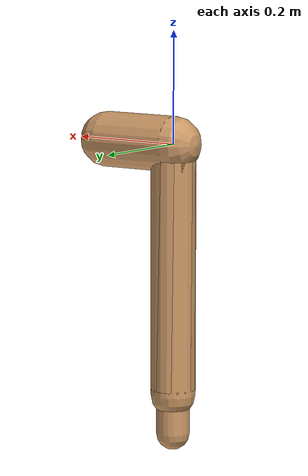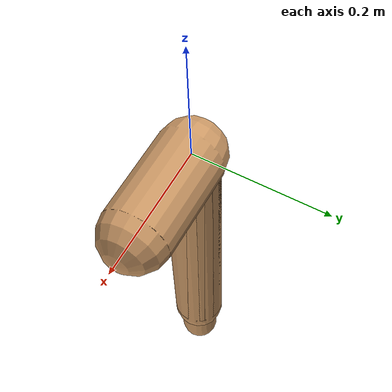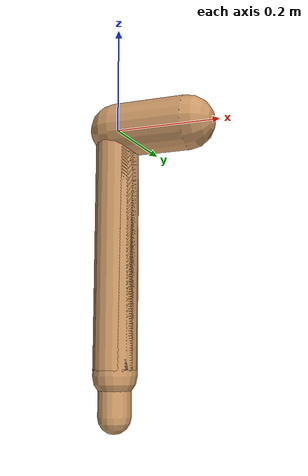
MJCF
<!-- converted to geom fromto version -->
<mujoco model="walker2d">
  <compiler angle="degree" coordinate="global" inertiafromgeom="true"/>
  <default>
    <joint armature="0.01" damping=".1" limited="true"/>
    <geom conaffinity="0" condim="3" contype="1" density="1000" friction="0.8 .1 .1" rgba="0.8 0.6 .4 1"/>
  </default>
  <option integrator="RK4" timestep="0.002"/>
  <worldbody>
    <body name="torso" pos="0 0 1.57">
      <joint armature="0" axis="1 0 0" damping="0" limited="false" name="ignorex" pos="0 0 0" stiffness="0" type="slide"/>
      <joint armature="0" axis="0 0 1" damping="0" limited="false" name="ignorez" pos="0 0 0" ref="1.25" stiffness="0" type="slide"/>
      <joint armature="0" axis="0 1 0" damping="0" limited="false" name="ignorey" pos="0 0 0" stiffness="0" type="hinge"/>
      <geom fromto="0 0 0 0 0 -0.44" name="torso_geom" size="0.04" type="capsule"/>
      <body name="camera_lens" pos="0 0 -0.05">
        <geom fromto="0 0 0 0.1 0 0" name="camera_lens_geom" size="0.02" type="capsule"/>
      </body>
      <body name="arm" pos="0 0 -0.1">
        <joint axis="0 -1 0" name="arm_joint" pos="0 0 0" range="-60 60" type="hinge"/>
        <geom fromto="0 0 0 0 0 -0.34" name="arm_geom" size="0.02" type="capsule"/>
      </body>
      <body name="arm_left" pos="0 0 -0.1">
        <joint axis="0 -1 0" name="arm_left_joint" pos="0 0 0" range="-60 60" type="hinge"/>
        <geom fromto="0 0 0 0 0 -0.34" name="arm_left_geom" size="0.02" type="capsule"/>
      </body>
      <body name="thigh" pos="0 0 -0.44">
        <joint axis="0 -1 0" name="thigh_joint" pos="0 0 0" range="-150 50" type="hinge"/>
        <geom fromto="0 0 0 0 0 -0.45" name="thigh_geom" size="0.04" type="capsule"/>
        <body name="leg" pos="0 0 -0.45">
          <joint axis="0 -1 0" name="leg_joint" pos="0 0 0" range="-150 0" type="hinge"/>
          <geom fromto="0 0 0 0 0 -0.52" name="leg_geom" size="0.03" type="capsule"/>
          <body name="foot" pos="0 0 -0.52">
            <joint axis="0 -1 0" name="foot_joint" pos="0 0 0" range="-45 45" type="hinge"/>
            <geom fromto="0 0 0 0.14 0 0" name="foot_geom" size="0.05" type="capsule"/>
          </body>
        </body>
      </body>
      <body name="thigh_left" pos="0 0 -0.44">
        <joint axis="0 -1 0" name="thigh_left_joint" pos="0 0 0" range="-150 50" type="hinge"/>
        <geom fromto="0 0 0 0 0 -0.45" name="thigh_left_geom" rgba=".7 .3 .6 1" size="0.04" type="capsule"/>
        <body name="leg_left" pos="0 0 -0.45">
          <joint axis="0 -1 0" name="leg_left_joint" pos="0 0 0" range="-150 0" type="hinge"/>
          <geom fromto="0 0 0 0 0 -0.52" name="leg_left_geom" rgba=".7 .3 .6 1" size="0.03" type="capsule"/>
          <body name="foot_left" pos="0 0 -0.52">
            <joint axis="0 -1 0" name="foot_left_joint" pos="0 0 0" range="-45 45" type="hinge"/>
            <geom fromto="0 0 0 0.14 0 0" name="foot_left_geom" rgba=".7 .3 .6 1" size="0.05" type="capsule"/>
          </body>
        </body>
      </body>
    </body>
  </worldbody>
  <actuator>
    <motor ctrllimited="true" ctrlrange="-1.0 1.0" gear="100" joint="thigh_joint"/>
    <motor ctrllimited="true" ctrlrange="-1.0 1.0" gear="100" joint="leg_joint"/>
    <motor ctrllimited="true" ctrlrange="-1.0 1.0" gear="100" joint="foot_joint"/>
    <motor ctrllimited="true" ctrlrange="-1.0 1.0" gear="100" joint="thigh_left_joint"/>
    <motor ctrllimited="true" ctrlrange="-1.0 1.0" gear="100" joint="leg_left_joint"/>
    <motor ctrllimited="true" ctrlrange="-1.0 1.0" gear="100" joint="foot_left_joint"/>
  </actuator>
</mujoco>
